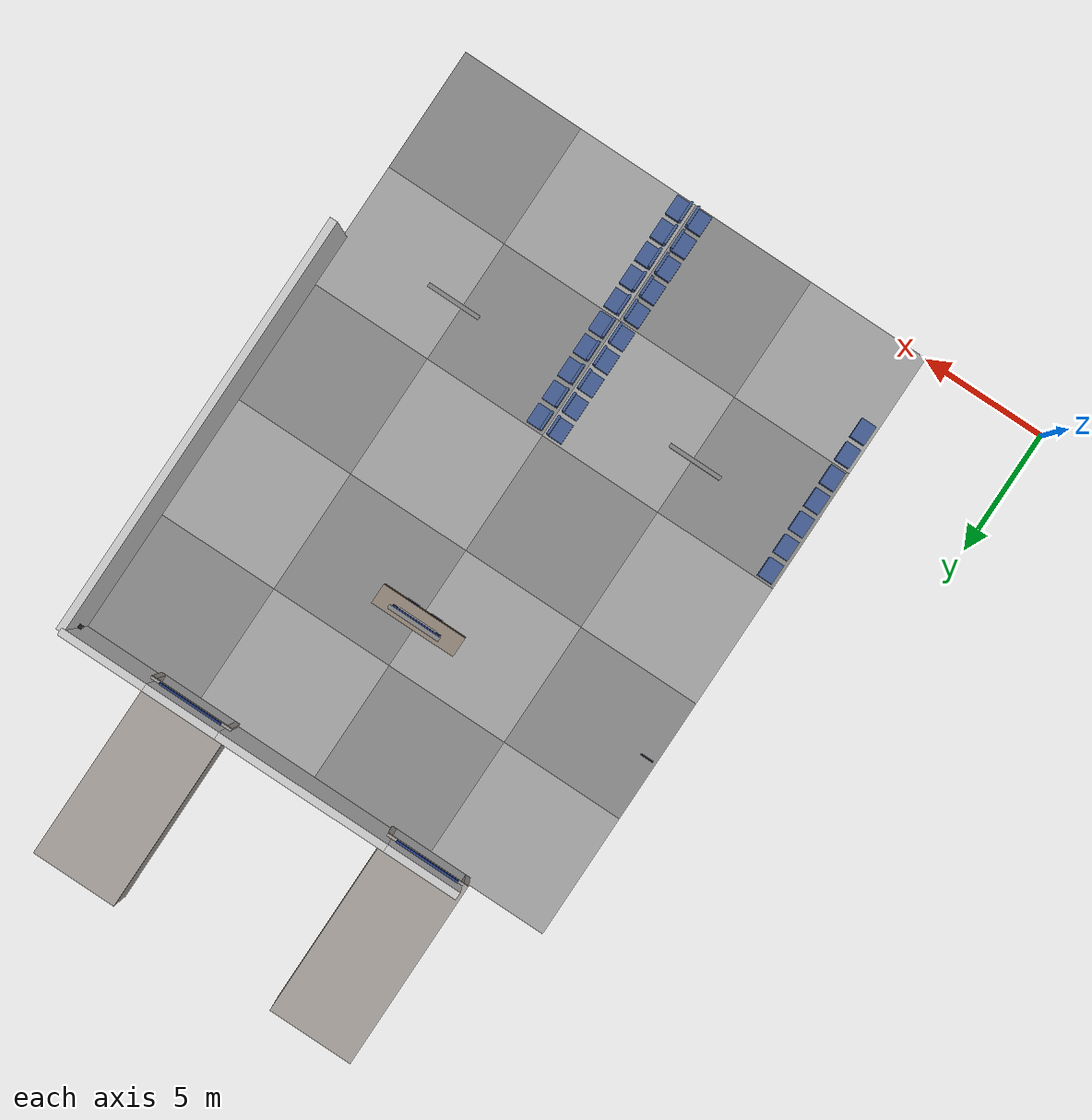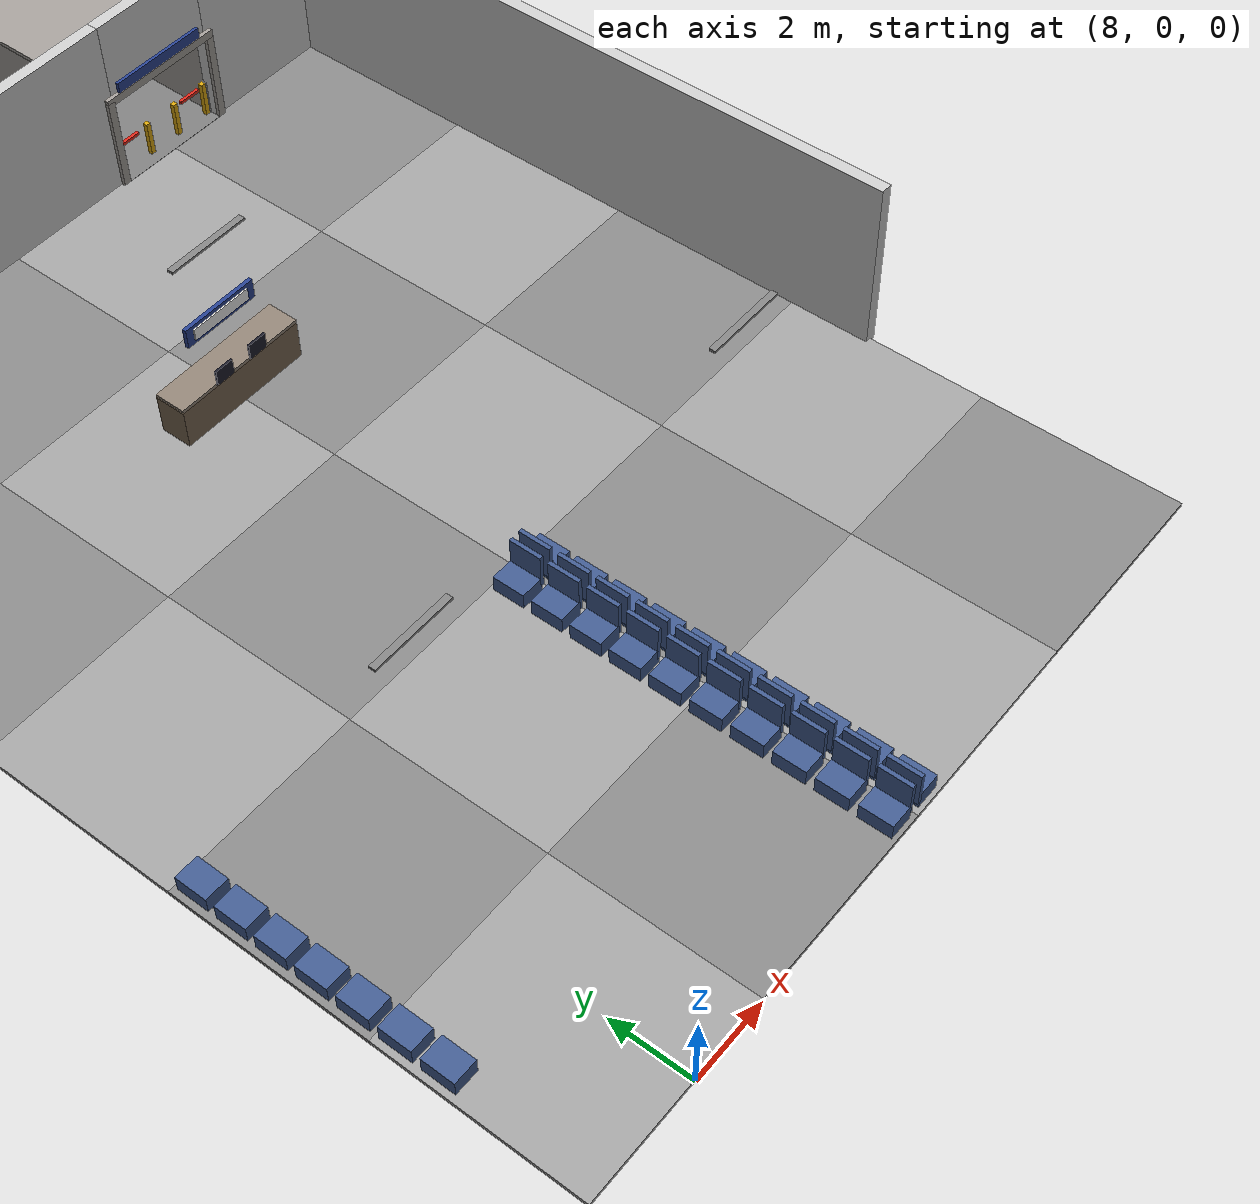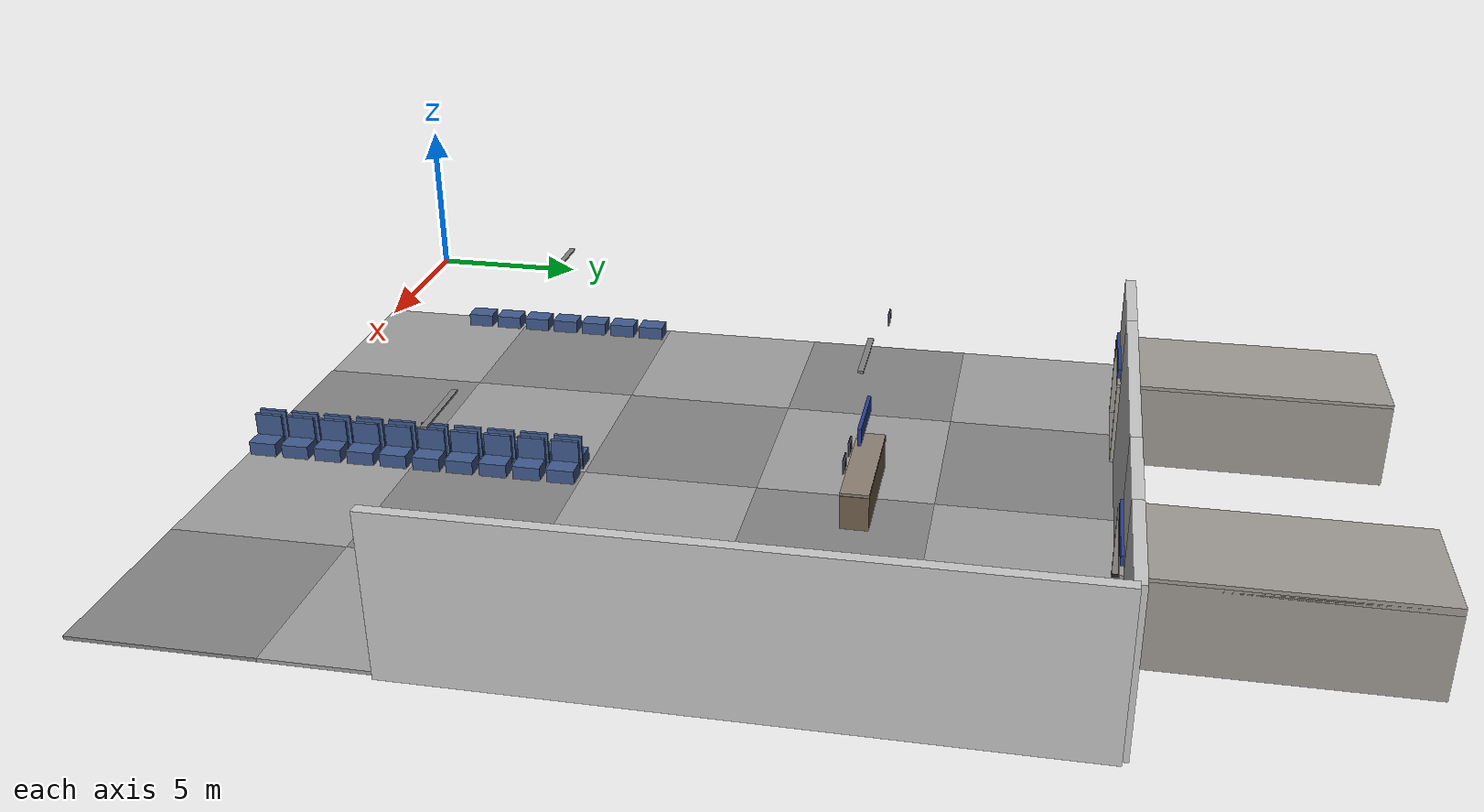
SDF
<sdf version="1.10">
 <world name="my_world">
  <model name="vtile_6_5">
   <static>true</static>
   <pose>7.5 2.5 0.05 0 0 0</pose>
   <link name="link">
    <visual name="vis">
     <geometry><box><size>5 5 0.1</size></box></geometry>
     <material><ambient>0.62 0.62 0.62 1</ambient><diffuse>0.62 0.62 0.62 1</diffuse></material>
    </visual>
   </link>
  </model>
  <model name="vtile_6_6">
   <static>true</static>
   <pose>7.5 7.5 0.05 0 0 0</pose>
   <link name="link">
    <visual name="vis">
     <geometry><box><size>5 5 0.1</size></box></geometry>
     <material><ambient>0.52 0.52 0.52 1</ambient><diffuse>0.52 0.52 0.52 1</diffuse></material>
    </visual>
   </link>
  </model>
  <model name="vtile_6_7">
   <static>true</static>
   <pose>7.5 12.5 0.05 0 0 0</pose>
   <link name="link">
    <visual name="vis">
     <geometry><box><size>5 5 0.1</size></box></geometry>
     <material><ambient>0.62 0.62 0.62 1</ambient><diffuse>0.62 0.62 0.62 1</diffuse></material>
    </visual>
   </link>
  </model>
  <model name="vtile_6_8">
   <static>true</static>
   <pose>7.5 17.5 0.05 0 0 0</pose>
   <link name="link">
    <visual name="vis">
     <geometry><box><size>5 5 0.1</size></box></geometry>
     <material><ambient>0.52 0.52 0.52 1</ambient><diffuse>0.52 0.52 0.52 1</diffuse></material>
    </visual>
   </link>
  </model>
  <model name="vtile_6_9">
   <static>true</static>
   <pose>7.5 22.5 0.05 0 0 0</pose>
   <link name="link">
    <visual name="vis">
     <geometry><box><size>5 5 0.1</size></box></geometry>
     <material><ambient>0.62 0.62 0.62 1</ambient><diffuse>0.62 0.62 0.62 1</diffuse></material>
    </visual>
   </link>
  </model>
  <model name="vtile_7_5">
   <static>true</static>
   <pose>12.5 2.5 0.05 0 0 0</pose>
   <link name="link">
    <visual name="vis">
     <geometry><box><size>5 5 0.1</size></box></geometry>
     <material><ambient>0.52 0.52 0.52 1</ambient><diffuse>0.52 0.52 0.52 1</diffuse></material>
    </visual>
   </link>
  </model>
  <model name="vtile_7_6">
   <static>true</static>
   <pose>12.5 7.5 0.05 0 0 0</pose>
   <link name="link">
    <visual name="vis">
     <geometry><box><size>5 5 0.1</size></box></geometry>
     <material><ambient>0.62 0.62 0.62 1</ambient><diffuse>0.62 0.62 0.62 1</diffuse></material>
    </visual>
   </link>
  </model>
  <model name="vtile_7_7">
   <static>true</static>
   <pose>12.5 12.5 0.05 0 0 0</pose>
   <link name="link">
    <visual name="vis">
     <geometry><box><size>5 5 0.1</size></box></geometry>
     <material><ambient>0.52 0.52 0.52 1</ambient><diffuse>0.52 0.52 0.52 1</diffuse></material>
    </visual>
   </link>
  </model>
  <model name="vtile_7_8">
   <static>true</static>
   <pose>12.5 17.5 0.05 0 0 0</pose>
   <link name="link">
    <visual name="vis">
     <geometry><box><size>5 5 0.1</size></box></geometry>
     <material><ambient>0.62 0.62 0.62 1</ambient><diffuse>0.62 0.62 0.62 1</diffuse></material>
    </visual>
   </link>
  </model>
  <model name="vtile_7_9">
   <static>true</static>
   <pose>12.5 22.5 0.05 0 0 0</pose>
   <link name="link">
    <visual name="vis">
     <geometry><box><size>5 5 0.1</size></box></geometry>
     <material><ambient>0.52 0.52 0.52 1</ambient><diffuse>0.52 0.52 0.52 1</diffuse></material>
    </visual>
   </link>
  </model>
  <model name="vtile_8_5">
   <static>true</static>
   <pose>17.5 2.5 0.05 0 0 0</pose>
   <link name="link">
    <visual name="vis">
     <geometry><box><size>5 5 0.1</size></box></geometry>
     <material><ambient>0.62 0.62 0.62 1</ambient><diffuse>0.62 0.62 0.62 1</diffuse></material>
    </visual>
   </link>
  </model>
  <model name="vtile_8_6">
   <static>true</static>
   <pose>17.5 7.5 0.05 0 0 0</pose>
   <link name="link">
    <visual name="vis">
     <geometry><box><size>5 5 0.1</size></box></geometry>
     <material><ambient>0.52 0.52 0.52 1</ambient><diffuse>0.52 0.52 0.52 1</diffuse></material>
    </visual>
   </link>
  </model>
  <model name="vtile_8_7">
   <static>true</static>
   <pose>17.5 12.5 0.05 0 0 0</pose>
   <link name="link">
    <visual name="vis">
     <geometry><box><size>5 5 0.1</size></box></geometry>
     <material><ambient>0.62 0.62 0.62 1</ambient><diffuse>0.62 0.62 0.62 1</diffuse></material>
    </visual>
   </link>
  </model>
  <model name="vtile_8_8">
   <static>true</static>
   <pose>17.5 17.5 0.05 0 0 0</pose>
   <link name="link">
    <visual name="vis">
     <geometry><box><size>5 5 0.1</size></box></geometry>
     <material><ambient>0.52 0.52 0.52 1</ambient><diffuse>0.52 0.52 0.52 1</diffuse></material>
    </visual>
   </link>
  </model>
  <model name="vtile_8_9">
   <static>true</static>
   <pose>17.5 22.5 0.05 0 0 0</pose>
   <link name="link">
    <visual name="vis">
     <geometry><box><size>5 5 0.1</size></box></geometry>
     <material><ambient>0.62 0.62 0.62 1</ambient><diffuse>0.62 0.62 0.62 1</diffuse></material>
    </visual>
   </link>
  </model>
  <model name="vtile_9_5">
   <static>true</static>
   <pose>22.5 2.5 0.05 0 0 0</pose>
   <link name="link">
    <visual name="vis">
     <geometry><box><size>5 5 0.1</size></box></geometry>
     <material><ambient>0.52 0.52 0.52 1</ambient><diffuse>0.52 0.52 0.52 1</diffuse></material>
    </visual>
   </link>
  </model>
  <model name="vtile_9_6">
   <static>true</static>
   <pose>22.5 7.5 0.05 0 0 0</pose>
   <link name="link">
    <visual name="vis">
     <geometry><box><size>5 5 0.1</size></box></geometry>
     <material><ambient>0.62 0.62 0.62 1</ambient><diffuse>0.62 0.62 0.62 1</diffuse></material>
    </visual>
   </link>
  </model>
  <model name="vtile_9_7">
   <static>true</static>
   <pose>22.5 12.5 0.05 0 0 0</pose>
   <link name="link">
    <visual name="vis">
     <geometry><box><size>5 5 0.1</size></box></geometry>
     <material><ambient>0.52 0.52 0.52 1</ambient><diffuse>0.52 0.52 0.52 1</diffuse></material>
    </visual>
   </link>
  </model>
  <model name="vtile_9_8">
   <static>true</static>
   <pose>22.5 17.5 0.05 0 0 0</pose>
   <link name="link">
    <visual name="vis">
     <geometry><box><size>5 5 0.1</size></box></geometry>
     <material><ambient>0.62 0.62 0.62 1</ambient><diffuse>0.62 0.62 0.62 1</diffuse></material>
    </visual>
   </link>
  </model>
  <model name="vtile_9_9">
   <static>true</static>
   <pose>22.5 22.5 0.05 0 0 0</pose>
   <link name="link">
    <visual name="vis">
     <geometry><box><size>5 5 0.1</size></box></geometry>
     <material><ambient>0.52 0.52 0.52 1</ambient><diffuse>0.52 0.52 0.52 1</diffuse></material>
    </visual>
   </link>
  </model>
  <model name="wall_north_4">
   <static>true</static>
   <pose>15.0 25 2.25 0 0 0</pose>
   <link name="link">
    <collision name="col"><geometry><box><size>7.0 0.3 4.5</size></box></geometry></collision>
    <visual name="vis">
     <geometry><box><size>7.0 0.3 4.5</size></box></geometry>
     <material><ambient>0.78 0.78 0.78 1</ambient><diffuse>0.78 0.78 0.78 1</diffuse></material>
    </visual>
   </link>
  </model>
  <model name="wall_north_5">
   <static>true</static>
   <pose>23.25 25 2.25 0 0 0</pose>
   <link name="link">
    <collision name="col"><geometry><box><size>3.5 0.3 4.5</size></box></geometry></collision>
    <visual name="vis">
     <geometry><box><size>3.5 0.3 4.5</size></box></geometry>
     <material><ambient>0.78 0.78 0.78 1</ambient><diffuse>0.78 0.78 0.78 1</diffuse></material>
    </visual>
   </link>
  </model>
  <model name="wall_north_top_10">
   <static>true</static>
   <pose>10 25 3.5 0 0 0</pose>
   <link name="link">
    <collision name="col"><geometry><box><size>3.0 0.3 2.0</size></box></geometry></collision>
    <visual name="vis">
     <geometry><box><size>3.0 0.3 2.0</size></box></geometry>
     <material><ambient>0.78 0.78 0.78 1</ambient><diffuse>0.78 0.78 0.78 1</diffuse></material>
    </visual>
   </link>
  </model>
  <model name="wall_north_top_20">
   <static>true</static>
   <pose>20 25 3.5 0 0 0</pose>
   <link name="link">
    <collision name="col"><geometry><box><size>3.0 0.3 2.0</size></box></geometry></collision>
    <visual name="vis">
     <geometry><box><size>3.0 0.3 2.0</size></box></geometry>
     <material><ambient>0.78 0.78 0.78 1</ambient><diffuse>0.78 0.78 0.78 1</diffuse></material>
    </visual>
   </link>
  </model>
  <model name="wall_east_n">
   <static>true</static>
   <pose>25 16.475 2.25 0 0 0</pose>
   <link name="link">
    <collision name="col"><geometry><box><size>0.3 17.05 4.5</size></box></geometry></collision>
    <visual name="vis">
     <geometry><box><size>0.3 17.05 4.5</size></box></geometry>
     <material><ambient>0.78 0.78 0.78 1</ambient><diffuse>0.78 0.78 0.78 1</diffuse></material>
    </visual>
   </link>
  </model>
  <model name="wall_east_top">
   <static>true</static>
   <pose>25 16.475 2.25 0 0 0</pose>
   <link name="link">
    <collision name="col"><geometry><box><size>0.001 0.001 0.001</size></box></geometry></collision>
    <visual name="vis">
     <geometry><box><size>0.001 0.001 0.001</size></box></geometry>
     <material><ambient>0.78 0.78 0.78 1</ambient><diffuse>0.78 0.78 0.78 1</diffuse></material>
    </visual>
   </link>
  </model>
  <model name="gate_a3_monitor">
   <static>true</static>
   <pose>5.5 17.55 1.4000 0 0 0</pose>
   <link name="link">
    <visual name="vis">
     <geometry><box><size>0.5 0.05 0.4</size></box></geometry>
     <material><ambient>0.1 0.1 0.15 1</ambient><diffuse>0.1 0.1 0.15 1</diffuse></material>
    </visual>
   </link>
  </model>
  <model name="gate_a4_counter">
   <static>true</static>
   <pose>15.0 18.0 0.55 0 0 0</pose>
   <link name="link">
    <collision name="col"><geometry><box><size>3.5 0.8 1.1</size></box></geometry></collision>
    <visual name="vis">
     <geometry><box><size>3.5 0.8 1.1</size></box></geometry>
     <material><ambient>0.45 0.38 0.3 1</ambient><diffuse>0.45 0.38 0.3 1</diffuse></material>
    </visual>
   </link>
  </model>
  <model name="gate_a4_counter_top">
   <static>true</static>
   <pose>15.0 18.0 1.1500 0 0 0</pose>
   <link name="link">
    <collision name="col"><geometry><box><size>3.5 0.8 0.08</size></box></geometry></collision>
    <visual name="vis">
     <geometry><box><size>3.5 0.8 0.08</size></box></geometry>
     <material><ambient>0.55 0.5 0.45 1</ambient><diffuse>0.55 0.5 0.45 1</diffuse></material>
    </visual>
   </link>
  </model>
  <model name="gate_a4_monitor">
   <static>true</static>
   <pose>15.5 17.55 1.4000 0 0 0</pose>
   <link name="link">
    <visual name="vis">
     <geometry><box><size>0.5 0.05 0.4</size></box></geometry>
     <material><ambient>0.1 0.1 0.15 1</ambient><diffuse>0.1 0.1 0.15 1</diffuse></material>
    </visual>
   </link>
  </model>
  <model name="gate_a4_monitor2">
   <static>true</static>
   <pose>14.5 17.55 1.4000 0 0 0</pose>
   <link name="link">
    <visual name="vis">
     <geometry><box><size>0.5 0.05 0.4</size></box></geometry>
     <material><ambient>0.1 0.1 0.15 1</ambient><diffuse>0.1 0.1 0.15 1</diffuse></material>
    </visual>
   </link>
  </model>
  <model name="gate_a4_sign">
   <static>true</static>
   <pose>15.0 18.0 2.5000 0 0 0</pose>
   <link name="link">
    <visual name="vis">
     <geometry><box><size>2.0 0.1 0.5</size></box></geometry>
     <material><ambient>0.15 0.25 0.55 1</ambient><diffuse>0.15 0.25 0.55 1</diffuse></material>
    </visual>
   </link>
  </model>
  <model name="gate_a4_sign_text">
   <static>true</static>
   <pose>15.0 17.94 2.5000 0 0 0</pose>
   <link name="link">
    <visual name="vis">
     <geometry><box><size>1.6 0.05 0.3</size></box></geometry>
     <material><ambient>0.9 0.9 0.9 1</ambient><diffuse>0.9 0.9 0.9 1</diffuse></material>
    </visual>
   </link>
  </model>
  <model name="lamp_c_10_strip">
   <static>true</static>
   <pose>10 8 4.42 0 0 0</pose>
   <link name="link">
    <visual name="strip">
     <geometry><box><size>2.0 0.12 0.04</size></box></geometry>
     <material>
      <ambient>0.95 0.95 0.88 1</ambient>
      <diffuse>0.95 0.95 0.88 1</diffuse>
      <emissive>0.35 0.35 0.30 1</emissive>
     </material>
    </visual>
    <visual name="housing">
     <pose>0 0 0.03 0 0 0</pose>
     <geometry><box><size>2.1 0.16 0.06</size></box></geometry>
     <material><ambient>0.5 0.5 0.5 1</ambient><diffuse>0.5 0.5 0.5 1</diffuse></material>
    </visual>
   </link>
  </model>
  <model name="lamp_c_20_strip">
   <static>true</static>
   <pose>20 8 4.42 0 0 0</pose>
   <link name="link">
    <visual name="strip">
     <geometry><box><size>2.0 0.12 0.04</size></box></geometry>
     <material>
      <ambient>0.95 0.95 0.88 1</ambient>
      <diffuse>0.95 0.95 0.88 1</diffuse>
      <emissive>0.35 0.35 0.30 1</emissive>
     </material>
    </visual>
    <visual name="housing">
     <pose>0 0 0.03 0 0 0</pose>
     <geometry><box><size>2.1 0.16 0.06</size></box></geometry>
     <material><ambient>0.5 0.5 0.5 1</ambient><diffuse>0.5 0.5 0.5 1</diffuse></material>
    </visual>
   </link>
  </model>
  <model name="lamp_gate_a4_strip">
   <static>true</static>
   <pose>15.0 18 4.42 0 0 0</pose>
   <link name="link">
    <visual name="strip">
     <geometry><box><size>2.0 0.12 0.04</size></box></geometry>
     <material>
      <ambient>0.95 0.95 0.88 1</ambient>
      <diffuse>0.95 0.95 0.88 1</diffuse>
      <emissive>0.35 0.35 0.30 1</emissive>
     </material>
    </visual>
    <visual name="housing">
     <pose>0 0 0.03 0 0 0</pose>
     <geometry><box><size>2.1 0.16 0.06</size></box></geometry>
     <material><ambient>0.5 0.5 0.5 1</ambient><diffuse>0.5 0.5 0.5 1</diffuse></material>
    </visual>
   </link>
  </model>
  <model name="camera_ne_mount">
   <static>true</static>
   <pose>24.5 24.5 4.3 0 0 0</pose>
   <link name="link">
    <visual name="vis">
     <geometry><box><size>0.15 0.15 0.08</size></box></geometry>
     <material><ambient>0.1 0.1 0.1 1</ambient><diffuse>0.1 0.1 0.1 1</diffuse></material>
    </visual>
   </link>
  </model>
  <model name="camera_ne_body">
   <static>true</static>
   <pose>24.5 24.5 4.15 0 1.9199 -2.3562</pose>
   <link name="link">
    <visual name="vis">
     <geometry><cylinder><radius>0.05</radius><length>0.16</length></cylinder></geometry>
     <material><ambient>0.12 0.12 0.12 1</ambient><diffuse>0.12 0.12 0.12 1</diffuse></material>
    </visual>
    <sensor name="camera_ne" type="camera">
     <pose>0 0 0 0 -1.5708 0</pose>
     <topic>/surveillance/ne</topic>
     <update_rate>10</update_rate>
     <camera>
      <horizontal_fov>1.9199</horizontal_fov>
      <image><width>1280</width><height>720</height></image>
      <clip><near>0.1</near><far>70.0</far></clip>
     </camera>
     <always_on>true</always_on>
     <visualize>false</visualize>
    </sensor>
   </link>
  </model>
  <model name="tunnel_a3_wall_l">
   <static>true</static>
   <pose>8.4 28.5 1.3 0 0 0</pose>
   <link name="link">
    <collision name="col"><geometry><box><size>0.2 7.5 2.4</size></box></geometry></collision>
    <visual name="vis">
     <geometry><box><size>0.2 7.5 2.4</size></box></geometry>
     <material><ambient>0.62 0.60 0.58 1</ambient><diffuse>0.62 0.60 0.58 1</diffuse></material>
    </visual>
   </link>
  </model>
  <model name="tunnel_a3_wall_r">
   <static>true</static>
   <pose>11.6 28.5 1.3 0 0 0</pose>
   <link name="link">
    <collision name="col"><geometry><box><size>0.2 7.5 2.4</size></box></geometry></collision>
    <visual name="vis">
     <geometry><box><size>0.2 7.5 2.4</size></box></geometry>
     <material><ambient>0.62 0.60 0.58 1</ambient><diffuse>0.62 0.60 0.58 1</diffuse></material>
    </visual>
   </link>
  </model>
  <model name="tunnel_a3_roof">
   <static>true</static>
   <pose>10 28.5 2.5 0 0 0</pose>
   <link name="link">
    <collision name="col"><geometry><box><size>3.4 7.5 0.2</size></box></geometry></collision>
    <visual name="vis">
     <geometry><box><size>3.4 7.5 0.2</size></box></geometry>
     <material><ambient>0.62 0.60 0.58 1</ambient><diffuse>0.62 0.60 0.58 1</diffuse></material>
    </visual>
   </link>
  </model>
  <model name="tunnel_a3_floor">
   <static>true</static>
   <pose>10 28.5 0.06 0 0 0</pose>
   <link name="link">
    <collision name="col"><geometry><box><size>3.0 7.5 0.1</size></box></geometry></collision>
    <visual name="vis">
     <geometry><box><size>3.0 7.5 0.1</size></box></geometry>
     <material><ambient>0.48 0.48 0.48 1</ambient><diffuse>0.48 0.48 0.48 1</diffuse></material>
    </visual>
   </link>
  </model>
  <model name="tunnel_a3_sign">
   <static>true</static>
   <pose>10 24.8 2.7 0 0 0</pose>
   <link name="link">
    <visual name="vis">
     <geometry><box><size>2.6 0.08 0.35</size></box></geometry>
     <material><ambient>0.15 0.25 0.55 1</ambient><diffuse>0.15 0.25 0.55 1</diffuse></material>
    </visual>
   </link>
  </model>
  <model name="tunnel_a4_wall_l">
   <static>true</static>
   <pose>18.4 28.5 1.3 0 0 0</pose>
   <link name="link">
    <collision name="col"><geometry><box><size>0.2 7.5 2.4</size></box></geometry></collision>
    <visual name="vis">
     <geometry><box><size>0.2 7.5 2.4</size></box></geometry>
     <material><ambient>0.62 0.60 0.58 1</ambient><diffuse>0.62 0.60 0.58 1</diffuse></material>
    </visual>
   </link>
  </model>
  <model name="tunnel_a4_wall_r">
   <static>true</static>
   <pose>21.6 28.5 1.3 0 0 0</pose>
   <link name="link">
    <collision name="col"><geometry><box><size>0.2 7.5 2.4</size></box></geometry></collision>
    <visual name="vis">
     <geometry><box><size>0.2 7.5 2.4</size></box></geometry>
     <material><ambient>0.62 0.60 0.58 1</ambient><diffuse>0.62 0.60 0.58 1</diffuse></material>
    </visual>
   </link>
  </model>
  <model name="tunnel_a4_roof">
   <static>true</static>
   <pose>20 28.5 2.5 0 0 0</pose>
   <link name="link">
    <collision name="col"><geometry><box><size>3.4 7.5 0.2</size></box></geometry></collision>
    <visual name="vis">
     <geometry><box><size>3.4 7.5 0.2</size></box></geometry>
     <material><ambient>0.62 0.60 0.58 1</ambient><diffuse>0.62 0.60 0.58 1</diffuse></material>
    </visual>
   </link>
  </model>
  <model name="tunnel_a4_floor">
   <static>true</static>
   <pose>20 28.5 0.06 0 0 0</pose>
   <link name="link">
    <collision name="col"><geometry><box><size>3.0 7.5 0.1</size></box></geometry></collision>
    <visual name="vis">
     <geometry><box><size>3.0 7.5 0.1</size></box></geometry>
     <material><ambient>0.48 0.48 0.48 1</ambient><diffuse>0.48 0.48 0.48 1</diffuse></material>
    </visual>
   </link>
  </model>
  <model name="tunnel_a4_sign">
   <static>true</static>
   <pose>20 24.8 2.7 0 0 0</pose>
   <link name="link">
    <visual name="vis">
     <geometry><box><size>2.6 0.08 0.35</size></box></geometry>
     <material><ambient>0.15 0.25 0.55 1</ambient><diffuse>0.15 0.25 0.55 1</diffuse></material>
    </visual>
   </link>
  </model>
  <model name="cluster_7_b_3">
   <static>true</static>
   <pose>5.45 3.50 0.25 0 0 0</pose>
   <link name="link">
    <collision name="col"><geometry><box><size>0.6 0.8 0.5</size></box></geometry></collision>
    <visual name="vis">
     <geometry><box><size>0.6 0.8 0.5</size></box></geometry>
     <material><ambient>0.25 0.35 0.55 1</ambient><diffuse>0.25 0.35 0.55 1</diffuse></material>
    </visual>
   </link>
  </model>
  <model name="cluster_7_b_4">
   <static>true</static>
   <pose>5.45 4.50 0.25 0 0 0</pose>
   <link name="link">
    <collision name="col"><geometry><box><size>0.6 0.8 0.5</size></box></geometry></collision>
    <visual name="vis">
     <geometry><box><size>0.6 0.8 0.5</size></box></geometry>
     <material><ambient>0.25 0.35 0.55 1</ambient><diffuse>0.25 0.35 0.55 1</diffuse></material>
    </visual>
   </link>
  </model>
  <model name="cluster_7_b_5">
   <static>true</static>
   <pose>5.45 5.50 0.25 0 0 0</pose>
   <link name="link">
    <collision name="col"><geometry><box><size>0.6 0.8 0.5</size></box></geometry></collision>
    <visual name="vis">
     <geometry><box><size>0.6 0.8 0.5</size></box></geometry>
     <material><ambient>0.25 0.35 0.55 1</ambient><diffuse>0.25 0.35 0.55 1</diffuse></material>
    </visual>
   </link>
  </model>
  <model name="cluster_7_b_6">
   <static>true</static>
   <pose>5.45 6.50 0.25 0 0 0</pose>
   <link name="link">
    <collision name="col"><geometry><box><size>0.6 0.8 0.5</size></box></geometry></collision>
    <visual name="vis">
     <geometry><box><size>0.6 0.8 0.5</size></box></geometry>
     <material><ambient>0.25 0.35 0.55 1</ambient><diffuse>0.25 0.35 0.55 1</diffuse></material>
    </visual>
   </link>
  </model>
  <model name="cluster_7_b_7">
   <static>true</static>
   <pose>5.45 7.50 0.25 0 0 0</pose>
   <link name="link">
    <collision name="col"><geometry><box><size>0.6 0.8 0.5</size></box></geometry></collision>
    <visual name="vis">
     <geometry><box><size>0.6 0.8 0.5</size></box></geometry>
     <material><ambient>0.25 0.35 0.55 1</ambient><diffuse>0.25 0.35 0.55 1</diffuse></material>
    </visual>
   </link>
  </model>
  <model name="cluster_7_b_8">
   <static>true</static>
   <pose>5.45 8.50 0.25 0 0 0</pose>
   <link name="link">
    <collision name="col"><geometry><box><size>0.6 0.8 0.5</size></box></geometry></collision>
    <visual name="vis">
     <geometry><box><size>0.6 0.8 0.5</size></box></geometry>
     <material><ambient>0.25 0.35 0.55 1</ambient><diffuse>0.25 0.35 0.55 1</diffuse></material>
    </visual>
   </link>
  </model>
  <model name="cluster_7_b_9">
   <static>true</static>
   <pose>5.45 9.50 0.25 0 0 0</pose>
   <link name="link">
    <collision name="col"><geometry><box><size>0.6 0.8 0.5</size></box></geometry></collision>
    <visual name="vis">
     <geometry><box><size>0.6 0.8 0.5</size></box></geometry>
     <material><ambient>0.25 0.35 0.55 1</ambient><diffuse>0.25 0.35 0.55 1</diffuse></material>
    </visual>
   </link>
  </model>
  <model name="cluster_8_a_0">
   <static>true</static>
   <pose>14.55 0.50 0.25 0 0 0</pose>
   <link name="link">
    <collision name="col"><geometry><box><size>0.6 0.8 0.5</size></box></geometry></collision>
    <visual name="vis">
     <geometry><box><size>0.6 0.8 0.5</size></box></geometry>
     <material><ambient>0.25 0.35 0.55 1</ambient><diffuse>0.25 0.35 0.55 1</diffuse></material>
    </visual>
   </link>
  </model>
  <model name="cluster_8_a_0_back">
   <static>true</static>
   <pose>14.85 0.50 0.7 0 0 0</pose>
   <link name="link">
    <collision name="col"><geometry><box><size>0.1 0.8 0.9</size></box></geometry></collision>
    <visual name="vis">
     <geometry><box><size>0.1 0.8 0.9</size></box></geometry>
     <material><ambient>0.25 0.35 0.55 1</ambient><diffuse>0.25 0.35 0.55 1</diffuse></material>
    </visual>
   </link>
  </model>
  <model name="cluster_8_b_0">
   <static>true</static>
   <pose>15.45 0.50 0.25 0 0 0</pose>
   <link name="link">
    <collision name="col"><geometry><box><size>0.6 0.8 0.5</size></box></geometry></collision>
    <visual name="vis">
     <geometry><box><size>0.6 0.8 0.5</size></box></geometry>
     <material><ambient>0.25 0.35 0.55 1</ambient><diffuse>0.25 0.35 0.55 1</diffuse></material>
    </visual>
   </link>
  </model>
  <model name="cluster_8_b_0_back">
   <static>true</static>
   <pose>15.15 0.50 0.7 0 0 0</pose>
   <link name="link">
    <collision name="col"><geometry><box><size>0.1 0.8 0.9</size></box></geometry></collision>
    <visual name="vis">
     <geometry><box><size>0.1 0.8 0.9</size></box></geometry>
     <material><ambient>0.25 0.35 0.55 1</ambient><diffuse>0.25 0.35 0.55 1</diffuse></material>
    </visual>
   </link>
  </model>
  <model name="cluster_8_a_1">
   <static>true</static>
   <pose>14.55 1.50 0.25 0 0 0</pose>
   <link name="link">
    <collision name="col"><geometry><box><size>0.6 0.8 0.5</size></box></geometry></collision>
    <visual name="vis">
     <geometry><box><size>0.6 0.8 0.5</size></box></geometry>
     <material><ambient>0.25 0.35 0.55 1</ambient><diffuse>0.25 0.35 0.55 1</diffuse></material>
    </visual>
   </link>
  </model>
  <model name="cluster_8_a_1_back">
   <static>true</static>
   <pose>14.85 1.50 0.7 0 0 0</pose>
   <link name="link">
    <collision name="col"><geometry><box><size>0.1 0.8 0.9</size></box></geometry></collision>
    <visual name="vis">
     <geometry><box><size>0.1 0.8 0.9</size></box></geometry>
     <material><ambient>0.25 0.35 0.55 1</ambient><diffuse>0.25 0.35 0.55 1</diffuse></material>
    </visual>
   </link>
  </model>
  <model name="cluster_8_b_1">
   <static>true</static>
   <pose>15.45 1.50 0.25 0 0 0</pose>
   <link name="link">
    <collision name="col"><geometry><box><size>0.6 0.8 0.5</size></box></geometry></collision>
    <visual name="vis">
     <geometry><box><size>0.6 0.8 0.5</size></box></geometry>
     <material><ambient>0.25 0.35 0.55 1</ambient><diffuse>0.25 0.35 0.55 1</diffuse></material>
    </visual>
   </link>
  </model>
  <model name="cluster_8_b_1_back">
   <static>true</static>
   <pose>15.15 1.50 0.7 0 0 0</pose>
   <link name="link">
    <collision name="col"><geometry><box><size>0.1 0.8 0.9</size></box></geometry></collision>
    <visual name="vis">
     <geometry><box><size>0.1 0.8 0.9</size></box></geometry>
     <material><ambient>0.25 0.35 0.55 1</ambient><diffuse>0.25 0.35 0.55 1</diffuse></material>
    </visual>
   </link>
  </model>
  <model name="cluster_8_a_2">
   <static>true</static>
   <pose>14.55 2.50 0.25 0 0 0</pose>
   <link name="link">
    <collision name="col"><geometry><box><size>0.6 0.8 0.5</size></box></geometry></collision>
    <visual name="vis">
     <geometry><box><size>0.6 0.8 0.5</size></box></geometry>
     <material><ambient>0.25 0.35 0.55 1</ambient><diffuse>0.25 0.35 0.55 1</diffuse></material>
    </visual>
   </link>
  </model>
  <model name="cluster_8_a_2_back">
   <static>true</static>
   <pose>14.85 2.50 0.7 0 0 0</pose>
   <link name="link">
    <collision name="col"><geometry><box><size>0.1 0.8 0.9</size></box></geometry></collision>
    <visual name="vis">
     <geometry><box><size>0.1 0.8 0.9</size></box></geometry>
     <material><ambient>0.25 0.35 0.55 1</ambient><diffuse>0.25 0.35 0.55 1</diffuse></material>
    </visual>
   </link>
  </model>
  <model name="cluster_8_b_2">
   <static>true</static>
   <pose>15.45 2.50 0.25 0 0 0</pose>
   <link name="link">
    <collision name="col"><geometry><box><size>0.6 0.8 0.5</size></box></geometry></collision>
    <visual name="vis">
     <geometry><box><size>0.6 0.8 0.5</size></box></geometry>
     <material><ambient>0.25 0.35 0.55 1</ambient><diffuse>0.25 0.35 0.55 1</diffuse></material>
    </visual>
   </link>
  </model>
  <model name="cluster_8_b_2_back">
   <static>true</static>
   <pose>15.15 2.50 0.7 0 0 0</pose>
   <link name="link">
    <collision name="col"><geometry><box><size>0.1 0.8 0.9</size></box></geometry></collision>
    <visual name="vis">
     <geometry><box><size>0.1 0.8 0.9</size></box></geometry>
     <material><ambient>0.25 0.35 0.55 1</ambient><diffuse>0.25 0.35 0.55 1</diffuse></material>
    </visual>
   </link>
  </model>
  <model name="cluster_8_a_3">
   <static>true</static>
   <pose>14.55 3.50 0.25 0 0 0</pose>
   <link name="link">
    <collision name="col"><geometry><box><size>0.6 0.8 0.5</size></box></geometry></collision>
    <visual name="vis">
     <geometry><box><size>0.6 0.8 0.5</size></box></geometry>
     <material><ambient>0.25 0.35 0.55 1</ambient><diffuse>0.25 0.35 0.55 1</diffuse></material>
    </visual>
   </link>
  </model>
  <model name="cluster_8_a_3_back">
   <static>true</static>
   <pose>14.85 3.50 0.7 0 0 0</pose>
   <link name="link">
    <collision name="col"><geometry><box><size>0.1 0.8 0.9</size></box></geometry></collision>
    <visual name="vis">
     <geometry><box><size>0.1 0.8 0.9</size></box></geometry>
     <material><ambient>0.25 0.35 0.55 1</ambient><diffuse>0.25 0.35 0.55 1</diffuse></material>
    </visual>
   </link>
  </model>
  <model name="cluster_8_b_3">
   <static>true</static>
   <pose>15.45 3.50 0.25 0 0 0</pose>
   <link name="link">
    <collision name="col"><geometry><box><size>0.6 0.8 0.5</size></box></geometry></collision>
    <visual name="vis">
     <geometry><box><size>0.6 0.8 0.5</size></box></geometry>
     <material><ambient>0.25 0.35 0.55 1</ambient><diffuse>0.25 0.35 0.55 1</diffuse></material>
    </visual>
   </link>
  </model>
  <model name="cluster_8_b_3_back">
   <static>true</static>
   <pose>15.15 3.50 0.7 0 0 0</pose>
   <link name="link">
    <collision name="col"><geometry><box><size>0.1 0.8 0.9</size></box></geometry></collision>
    <visual name="vis">
     <geometry><box><size>0.1 0.8 0.9</size></box></geometry>
     <material><ambient>0.25 0.35 0.55 1</ambient><diffuse>0.25 0.35 0.55 1</diffuse></material>
    </visual>
   </link>
  </model>
  <model name="cluster_8_a_4">
   <static>true</static>
   <pose>14.55 4.50 0.25 0 0 0</pose>
   <link name="link">
    <collision name="col"><geometry><box><size>0.6 0.8 0.5</size></box></geometry></collision>
    <visual name="vis">
     <geometry><box><size>0.6 0.8 0.5</size></box></geometry>
     <material><ambient>0.25 0.35 0.55 1</ambient><diffuse>0.25 0.35 0.55 1</diffuse></material>
    </visual>
   </link>
  </model>
  <model name="cluster_8_a_4_back">
   <static>true</static>
   <pose>14.85 4.50 0.7 0 0 0</pose>
   <link name="link">
    <collision name="col"><geometry><box><size>0.1 0.8 0.9</size></box></geometry></collision>
    <visual name="vis">
     <geometry><box><size>0.1 0.8 0.9</size></box></geometry>
     <material><ambient>0.25 0.35 0.55 1</ambient><diffuse>0.25 0.35 0.55 1</diffuse></material>
    </visual>
   </link>
  </model>
  <model name="cluster_8_b_4">
   <static>true</static>
   <pose>15.45 4.50 0.25 0 0 0</pose>
   <link name="link">
    <collision name="col"><geometry><box><size>0.6 0.8 0.5</size></box></geometry></collision>
    <visual name="vis">
     <geometry><box><size>0.6 0.8 0.5</size></box></geometry>
     <material><ambient>0.25 0.35 0.55 1</ambient><diffuse>0.25 0.35 0.55 1</diffuse></material>
    </visual>
   </link>
  </model>
  <model name="cluster_8_b_4_back">
   <static>true</static>
   <pose>15.15 4.50 0.7 0 0 0</pose>
   <link name="link">
    <collision name="col"><geometry><box><size>0.1 0.8 0.9</size></box></geometry></collision>
    <visual name="vis">
     <geometry><box><size>0.1 0.8 0.9</size></box></geometry>
     <material><ambient>0.25 0.35 0.55 1</ambient><diffuse>0.25 0.35 0.55 1</diffuse></material>
    </visual>
   </link>
  </model>
  <model name="cluster_8_a_5">
   <static>true</static>
   <pose>14.55 5.50 0.25 0 0 0</pose>
   <link name="link">
    <collision name="col"><geometry><box><size>0.6 0.8 0.5</size></box></geometry></collision>
    <visual name="vis">
     <geometry><box><size>0.6 0.8 0.5</size></box></geometry>
     <material><ambient>0.25 0.35 0.55 1</ambient><diffuse>0.25 0.35 0.55 1</diffuse></material>
    </visual>
   </link>
  </model>
  <model name="cluster_8_a_5_back">
   <static>true</static>
   <pose>14.85 5.50 0.7 0 0 0</pose>
   <link name="link">
    <collision name="col"><geometry><box><size>0.1 0.8 0.9</size></box></geometry></collision>
    <visual name="vis">
     <geometry><box><size>0.1 0.8 0.9</size></box></geometry>
     <material><ambient>0.25 0.35 0.55 1</ambient><diffuse>0.25 0.35 0.55 1</diffuse></material>
    </visual>
   </link>
  </model>
  <model name="cluster_8_b_5">
   <static>true</static>
   <pose>15.45 5.50 0.25 0 0 0</pose>
   <link name="link">
    <collision name="col"><geometry><box><size>0.6 0.8 0.5</size></box></geometry></collision>
    <visual name="vis">
     <geometry><box><size>0.6 0.8 0.5</size></box></geometry>
     <material><ambient>0.25 0.35 0.55 1</ambient><diffuse>0.25 0.35 0.55 1</diffuse></material>
    </visual>
   </link>
  </model>
  <model name="cluster_8_b_5_back">
   <static>true</static>
   <pose>15.15 5.50 0.7 0 0 0</pose>
   <link name="link">
    <collision name="col"><geometry><box><size>0.1 0.8 0.9</size></box></geometry></collision>
    <visual name="vis">
     <geometry><box><size>0.1 0.8 0.9</size></box></geometry>
     <material><ambient>0.25 0.35 0.55 1</ambient><diffuse>0.25 0.35 0.55 1</diffuse></material>
    </visual>
   </link>
  </model>
  <model name="cluster_8_a_6">
   <static>true</static>
   <pose>14.55 6.50 0.25 0 0 0</pose>
   <link name="link">
    <collision name="col"><geometry><box><size>0.6 0.8 0.5</size></box></geometry></collision>
    <visual name="vis">
     <geometry><box><size>0.6 0.8 0.5</size></box></geometry>
     <material><ambient>0.25 0.35 0.55 1</ambient><diffuse>0.25 0.35 0.55 1</diffuse></material>
    </visual>
   </link>
  </model>
  <model name="cluster_8_a_6_back">
   <static>true</static>
   <pose>14.85 6.50 0.7 0 0 0</pose>
   <link name="link">
    <collision name="col"><geometry><box><size>0.1 0.8 0.9</size></box></geometry></collision>
    <visual name="vis">
     <geometry><box><size>0.1 0.8 0.9</size></box></geometry>
     <material><ambient>0.25 0.35 0.55 1</ambient><diffuse>0.25 0.35 0.55 1</diffuse></material>
    </visual>
   </link>
  </model>
  <model name="cluster_8_b_6">
   <static>true</static>
   <pose>15.45 6.50 0.25 0 0 0</pose>
   <link name="link">
    <collision name="col"><geometry><box><size>0.6 0.8 0.5</size></box></geometry></collision>
    <visual name="vis">
     <geometry><box><size>0.6 0.8 0.5</size></box></geometry>
     <material><ambient>0.25 0.35 0.55 1</ambient><diffuse>0.25 0.35 0.55 1</diffuse></material>
    </visual>
   </link>
  </model>
  <model name="cluster_8_b_6_back">
   <static>true</static>
   <pose>15.15 6.50 0.7 0 0 0</pose>
   <link name="link">
    <collision name="col"><geometry><box><size>0.1 0.8 0.9</size></box></geometry></collision>
    <visual name="vis">
     <geometry><box><size>0.1 0.8 0.9</size></box></geometry>
     <material><ambient>0.25 0.35 0.55 1</ambient><diffuse>0.25 0.35 0.55 1</diffuse></material>
    </visual>
   </link>
  </model>
  <model name="cluster_8_a_7">
   <static>true</static>
   <pose>14.55 7.50 0.25 0 0 0</pose>
   <link name="link">
    <collision name="col"><geometry><box><size>0.6 0.8 0.5</size></box></geometry></collision>
    <visual name="vis">
     <geometry><box><size>0.6 0.8 0.5</size></box></geometry>
     <material><ambient>0.25 0.35 0.55 1</ambient><diffuse>0.25 0.35 0.55 1</diffuse></material>
    </visual>
   </link>
  </model>
  <model name="cluster_8_a_7_back">
   <static>true</static>
   <pose>14.85 7.50 0.7 0 0 0</pose>
   <link name="link">
    <collision name="col"><geometry><box><size>0.1 0.8 0.9</size></box></geometry></collision>
    <visual name="vis">
     <geometry><box><size>0.1 0.8 0.9</size></box></geometry>
     <material><ambient>0.25 0.35 0.55 1</ambient><diffuse>0.25 0.35 0.55 1</diffuse></material>
    </visual>
   </link>
  </model>
  <model name="cluster_8_b_7">
   <static>true</static>
   <pose>15.45 7.50 0.25 0 0 0</pose>
   <link name="link">
    <collision name="col"><geometry><box><size>0.6 0.8 0.5</size></box></geometry></collision>
    <visual name="vis">
     <geometry><box><size>0.6 0.8 0.5</size></box></geometry>
     <material><ambient>0.25 0.35 0.55 1</ambient><diffuse>0.25 0.35 0.55 1</diffuse></material>
    </visual>
   </link>
  </model>
  <model name="cluster_8_b_7_back">
   <static>true</static>
   <pose>15.15 7.50 0.7 0 0 0</pose>
   <link name="link">
    <collision name="col"><geometry><box><size>0.1 0.8 0.9</size></box></geometry></collision>
    <visual name="vis">
     <geometry><box><size>0.1 0.8 0.9</size></box></geometry>
     <material><ambient>0.25 0.35 0.55 1</ambient><diffuse>0.25 0.35 0.55 1</diffuse></material>
    </visual>
   </link>
  </model>
  <model name="cluster_8_a_8">
   <static>true</static>
   <pose>14.55 8.50 0.25 0 0 0</pose>
   <link name="link">
    <collision name="col"><geometry><box><size>0.6 0.8 0.5</size></box></geometry></collision>
    <visual name="vis">
     <geometry><box><size>0.6 0.8 0.5</size></box></geometry>
     <material><ambient>0.25 0.35 0.55 1</ambient><diffuse>0.25 0.35 0.55 1</diffuse></material>
    </visual>
   </link>
  </model>
  <model name="cluster_8_a_8_back">
   <static>true</static>
   <pose>14.85 8.50 0.7 0 0 0</pose>
   <link name="link">
    <collision name="col"><geometry><box><size>0.1 0.8 0.9</size></box></geometry></collision>
    <visual name="vis">
     <geometry><box><size>0.1 0.8 0.9</size></box></geometry>
     <material><ambient>0.25 0.35 0.55 1</ambient><diffuse>0.25 0.35 0.55 1</diffuse></material>
    </visual>
   </link>
  </model>
  <model name="cluster_8_b_8">
   <static>true</static>
   <pose>15.45 8.50 0.25 0 0 0</pose>
   <link name="link">
    <collision name="col"><geometry><box><size>0.6 0.8 0.5</size></box></geometry></collision>
    <visual name="vis">
     <geometry><box><size>0.6 0.8 0.5</size></box></geometry>
     <material><ambient>0.25 0.35 0.55 1</ambient><diffuse>0.25 0.35 0.55 1</diffuse></material>
    </visual>
   </link>
  </model>
  <model name="cluster_8_b_8_back">
   <static>true</static>
   <pose>15.15 8.50 0.7 0 0 0</pose>
   <link name="link">
    <collision name="col"><geometry><box><size>0.1 0.8 0.9</size></box></geometry></collision>
    <visual name="vis">
     <geometry><box><size>0.1 0.8 0.9</size></box></geometry>
     <material><ambient>0.25 0.35 0.55 1</ambient><diffuse>0.25 0.35 0.55 1</diffuse></material>
    </visual>
   </link>
  </model>
  <model name="cluster_8_a_9">
   <static>true</static>
   <pose>14.55 9.50 0.25 0 0 0</pose>
   <link name="link">
    <collision name="col"><geometry><box><size>0.6 0.8 0.5</size></box></geometry></collision>
    <visual name="vis">
     <geometry><box><size>0.6 0.8 0.5</size></box></geometry>
     <material><ambient>0.25 0.35 0.55 1</ambient><diffuse>0.25 0.35 0.55 1</diffuse></material>
    </visual>
   </link>
  </model>
  <model name="cluster_8_a_9_back">
   <static>true</static>
   <pose>14.85 9.50 0.7 0 0 0</pose>
   <link name="link">
    <collision name="col"><geometry><box><size>0.1 0.8 0.9</size></box></geometry></collision>
    <visual name="vis">
     <geometry><box><size>0.1 0.8 0.9</size></box></geometry>
     <material><ambient>0.25 0.35 0.55 1</ambient><diffuse>0.25 0.35 0.55 1</diffuse></material>
    </visual>
   </link>
  </model>
  <model name="cluster_8_b_9">
   <static>true</static>
   <pose>15.45 9.50 0.25 0 0 0</pose>
   <link name="link">
    <collision name="col"><geometry><box><size>0.6 0.8 0.5</size></box></geometry></collision>
    <visual name="vis">
     <geometry><box><size>0.6 0.8 0.5</size></box></geometry>
     <material><ambient>0.25 0.35 0.55 1</ambient><diffuse>0.25 0.35 0.55 1</diffuse></material>
    </visual>
   </link>
  </model>
  <model name="cluster_8_b_9_back">
   <static>true</static>
   <pose>15.15 9.50 0.7 0 0 0</pose>
   <link name="link">
    <collision name="col"><geometry><box><size>0.1 0.8 0.9</size></box></geometry></collision>
    <visual name="vis">
     <geometry><box><size>0.1 0.8 0.9</size></box></geometry>
     <material><ambient>0.25 0.35 0.55 1</ambient><diffuse>0.25 0.35 0.55 1</diffuse></material>
    </visual>
   </link>
  </model>
  <model name="barrier_a3_post_l">
   <static>true</static>
   <pose>8.6 25.1 0.5 0 0 0</pose>
   <link name="link">
    <collision name="col"><geometry><box><size>0.12 0.12 1.0</size></box></geometry></collision>
    <visual name="vis">
     <geometry><box><size>0.12 0.12 1.0</size></box></geometry>
     <material><ambient>0.85 0.65 0.05 1</ambient><diffuse>0.85 0.65 0.05 1</diffuse></material>
    </visual>
   </link>
  </model>
  <model name="barrier_a3_arm_l">
   <static>true</static>
   <pose>8.95 25.1 0.9 0 0 0</pose>
   <link name="link">
    <collision name="col"><geometry><box><size>0.6 0.08 0.08</size></box></geometry></collision>
    <visual name="vis">
     <geometry><box><size>0.6 0.08 0.08</size></box></geometry>
     <material><ambient>0.85 0.15 0.1 1</ambient><diffuse>0.85 0.15 0.1 1</diffuse></material>
    </visual>
   </link>
  </model>
  <model name="barrier_a3_post_ml">
   <static>true</static>
   <pose>9.55 25.1 0.5 0 0 0</pose>
   <link name="link">
    <collision name="col"><geometry><box><size>0.12 0.12 1.0</size></box></geometry></collision>
    <visual name="vis">
     <geometry><box><size>0.12 0.12 1.0</size></box></geometry>
     <material><ambient>0.85 0.65 0.05 1</ambient><diffuse>0.85 0.65 0.05 1</diffuse></material>
    </visual>
   </link>
  </model>
  <model name="barrier_a3_post_mr">
   <static>true</static>
   <pose>10.45 25.1 0.5 0 0 0</pose>
   <link name="link">
    <collision name="col"><geometry><box><size>0.12 0.12 1.0</size></box></geometry></collision>
    <visual name="vis">
     <geometry><box><size>0.12 0.12 1.0</size></box></geometry>
     <material><ambient>0.85 0.65 0.05 1</ambient><diffuse>0.85 0.65 0.05 1</diffuse></material>
    </visual>
   </link>
  </model>
  <model name="barrier_a3_arm_r">
   <static>true</static>
   <pose>10.95 25.1 0.9 0 0 0</pose>
   <link name="link">
    <collision name="col"><geometry><box><size>0.6 0.08 0.08</size></box></geometry></collision>
    <visual name="vis">
     <geometry><box><size>0.6 0.08 0.08</size></box></geometry>
     <material><ambient>0.85 0.15 0.1 1</ambient><diffuse>0.85 0.15 0.1 1</diffuse></material>
    </visual>
   </link>
  </model>
  <model name="barrier_a3_post_r">
   <static>true</static>
   <pose>11.4 25.1 0.5 0 0 0</pose>
   <link name="link">
    <collision name="col"><geometry><box><size>0.12 0.12 1.0</size></box></geometry></collision>
    <visual name="vis">
     <geometry><box><size>0.12 0.12 1.0</size></box></geometry>
     <material><ambient>0.85 0.65 0.05 1</ambient><diffuse>0.85 0.65 0.05 1</diffuse></material>
    </visual>
   </link>
  </model>
  <model name="barrier_a3_fill_l">
   <static>true</static>
   <pose>8.5 25.1 0.5 0 0 0</pose>
   <link name="link">
    <collision name="col"><geometry><box><size>0.08 0.12 1.0</size></box></geometry></collision>
    <visual name="vis">
     <geometry><box><size>0.08 0.12 1.0</size></box></geometry>
     <material><ambient>0.6 0.6 0.6 1</ambient><diffuse>0.6 0.6 0.6 1</diffuse></material>
    </visual>
   </link>
  </model>
  <model name="barrier_a3_fill_r">
   <static>true</static>
   <pose>11.5 25.1 0.5 0 0 0</pose>
   <link name="link">
    <collision name="col"><geometry><box><size>0.08 0.12 1.0</size></box></geometry></collision>
    <visual name="vis">
     <geometry><box><size>0.08 0.12 1.0</size></box></geometry>
     <material><ambient>0.6 0.6 0.6 1</ambient><diffuse>0.6 0.6 0.6 1</diffuse></material>
    </visual>
   </link>
  </model>
  <model name="barrier_a4_post_l">
   <static>true</static>
   <pose>18.6 25.1 0.5 0 0 0</pose>
   <link name="link">
    <collision name="col"><geometry><box><size>0.12 0.12 1.0</size></box></geometry></collision>
    <visual name="vis">
     <geometry><box><size>0.12 0.12 1.0</size></box></geometry>
     <material><ambient>0.85 0.65 0.05 1</ambient><diffuse>0.85 0.65 0.05 1</diffuse></material>
    </visual>
   </link>
  </model>
  <model name="barrier_a4_arm_l">
   <static>true</static>
   <pose>18.95 25.1 0.9 0 0 0</pose>
   <link name="link">
    <collision name="col"><geometry><box><size>0.6 0.08 0.08</size></box></geometry></collision>
    <visual name="vis">
     <geometry><box><size>0.6 0.08 0.08</size></box></geometry>
     <material><ambient>0.85 0.15 0.1 1</ambient><diffuse>0.85 0.15 0.1 1</diffuse></material>
    </visual>
   </link>
  </model>
  <model name="barrier_a4_post_ml">
   <static>true</static>
   <pose>19.55 25.1 0.5 0 0 0</pose>
   <link name="link">
    <collision name="col"><geometry><box><size>0.12 0.12 1.0</size></box></geometry></collision>
    <visual name="vis">
     <geometry><box><size>0.12 0.12 1.0</size></box></geometry>
     <material><ambient>0.85 0.65 0.05 1</ambient><diffuse>0.85 0.65 0.05 1</diffuse></material>
    </visual>
   </link>
  </model>
  <model name="barrier_a4_post_mr">
   <static>true</static>
   <pose>20.45 25.1 0.5 0 0 0</pose>
   <link name="link">
    <collision name="col"><geometry><box><size>0.12 0.12 1.0</size></box></geometry></collision>
    <visual name="vis">
     <geometry><box><size>0.12 0.12 1.0</size></box></geometry>
     <material><ambient>0.85 0.65 0.05 1</ambient><diffuse>0.85 0.65 0.05 1</diffuse></material>
    </visual>
   </link>
  </model>
  <model name="barrier_a4_arm_r">
   <static>true</static>
   <pose>20.95 25.1 0.9 0 0 0</pose>
   <link name="link">
    <collision name="col"><geometry><box><size>0.6 0.08 0.08</size></box></geometry></collision>
    <visual name="vis">
     <geometry><box><size>0.6 0.08 0.08</size></box></geometry>
     <material><ambient>0.85 0.15 0.1 1</ambient><diffuse>0.85 0.15 0.1 1</diffuse></material>
    </visual>
   </link>
  </model>
  <model name="barrier_a4_post_r">
   <static>true</static>
   <pose>21.4 25.1 0.5 0 0 0</pose>
   <link name="link">
    <collision name="col"><geometry><box><size>0.12 0.12 1.0</size></box></geometry></collision>
    <visual name="vis">
     <geometry><box><size>0.12 0.12 1.0</size></box></geometry>
     <material><ambient>0.85 0.65 0.05 1</ambient><diffuse>0.85 0.65 0.05 1</diffuse></material>
    </visual>
   </link>
  </model>
  <model name="barrier_a4_fill_l">
   <static>true</static>
   <pose>18.5 25.1 0.5 0 0 0</pose>
   <link name="link">
    <collision name="col"><geometry><box><size>0.08 0.12 1.0</size></box></geometry></collision>
    <visual name="vis">
     <geometry><box><size>0.08 0.12 1.0</size></box></geometry>
     <material><ambient>0.6 0.6 0.6 1</ambient><diffuse>0.6 0.6 0.6 1</diffuse></material>
    </visual>
   </link>
  </model>
  <model name="barrier_a4_fill_r">
   <static>true</static>
   <pose>21.5 25.1 0.5 0 0 0</pose>
   <link name="link">
    <collision name="col"><geometry><box><size>0.08 0.12 1.0</size></box></geometry></collision>
    <visual name="vis">
     <geometry><box><size>0.08 0.12 1.0</size></box></geometry>
     <material><ambient>0.6 0.6 0.6 1</ambient><diffuse>0.6 0.6 0.6 1</diffuse></material>
    </visual>
   </link>
  </model>
 </world>
</sdf>
